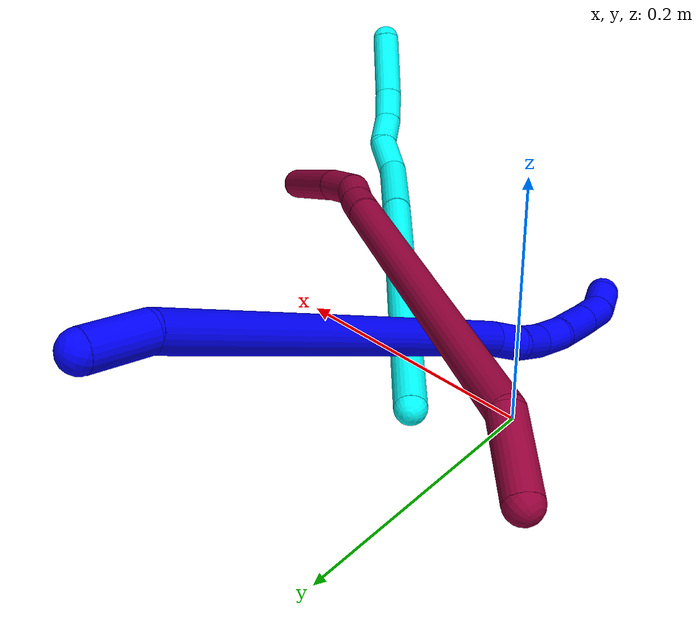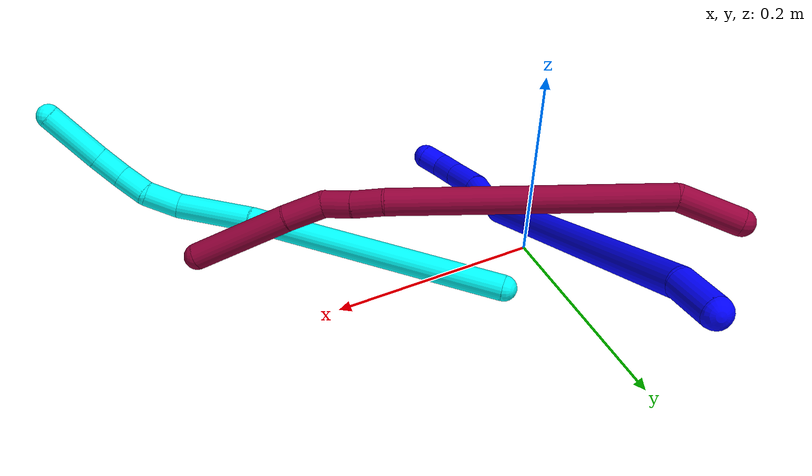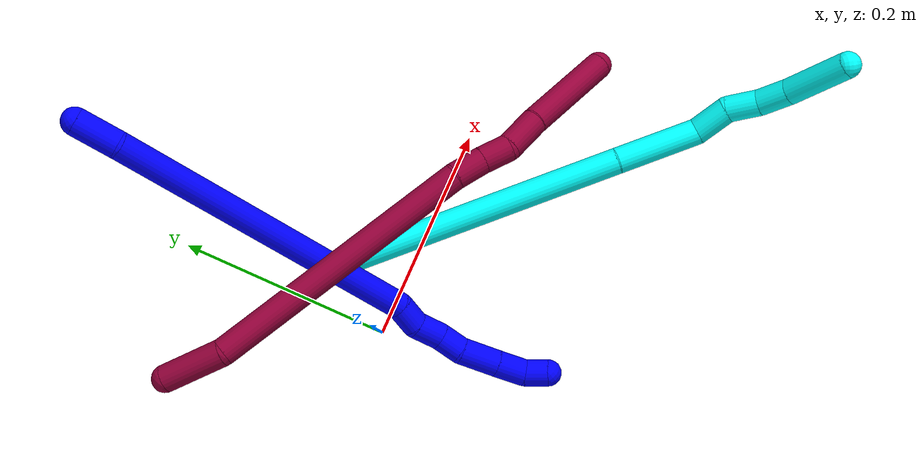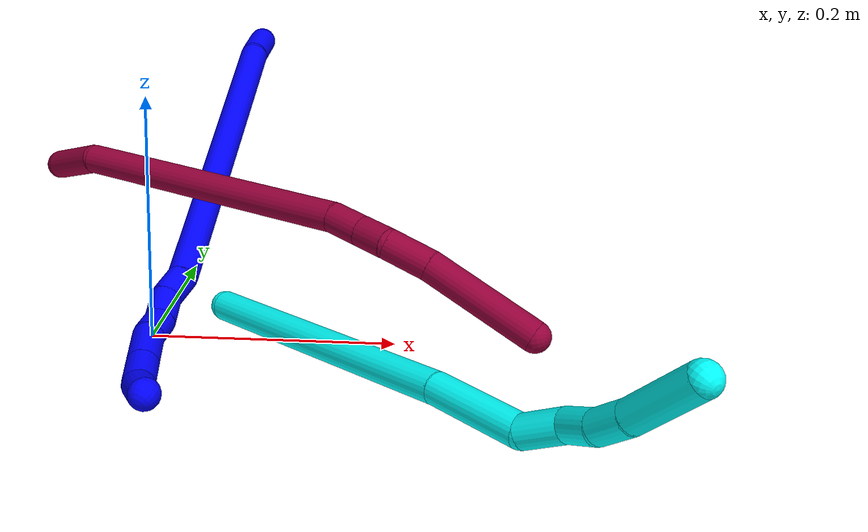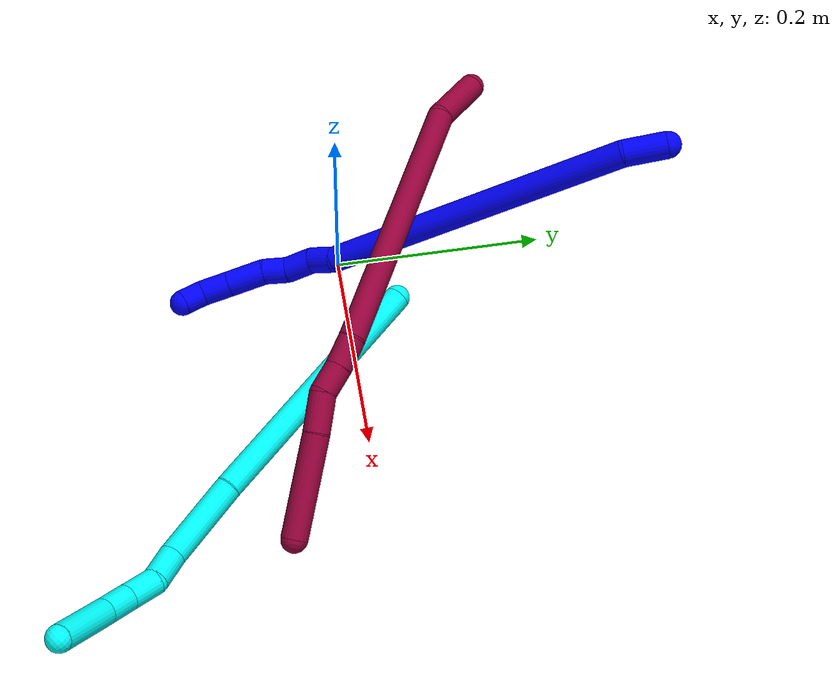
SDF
<sdf version="1.7">
 <world name="default">
  <model name="photoneo_s_sensor">
   <static>1</static>
   <pose>0 0 2 1.57079 1.57079 3.14159</pose>
   <link name="link">
    <inertial><mass>0.1</mass></inertial>
    <sensor name="sensor" type="depth">
     <update_rate>30</update_rate>
     <camera>
      <horizontal_fov>1.22</horizontal_fov>
      <image><width>1920</width><height>1200</height><format>B8G8R8</format></image>
      <clip><near>0.1</near><far>4</far></clip>
      <depth_camera><output>points</output></depth_camera>
     </camera>
     <plugin name="camera_plugin" filename="libgazebo_ros_depth_camera.so">
      <baseline>0.2</baseline>
      <alwaysOn>1</alwaysOn>
      <updateRate>0.0</updateRate>
      <cameraName>camera_ir</cameraName>
      <imageTopicName>/camera/color/image_raw</imageTopicName>
      <cameraInfoTopicName>/camera/color/camera_info</cameraInfoTopicName>
      <depthImageTopicName>/camera/depth/image_raw</depthImageTopicName>
      <depthImageCameraInfoTopicName>/camera/depth/camera_info</depthImageCameraInfoTopicName>
      <pointCloudTopicName>/camera/depth/points</pointCloudTopicName>
      <frameName>fr_optical</frameName>
      <pointCloudCutoff>0.1</pointCloudCutoff>
      <pointCloudCutoffMax>2.0</pointCloudCutoffMax>
      <distortionK1>0</distortionK1>
      <distortionK2>0</distortionK2>
      <distortionK3>0</distortionK3>
      <distortionT1>0</distortionT1>
      <distortionT2>0</distortionT2>
      <CxPrime>0</CxPrime>
      <Cx>0</Cx>
      <Cy>0</Cy>
      <focalLength>0</focalLength>
      <hackBaseline>0</hackBaseline>
     </plugin>
    </sensor>
   </link>
  </model>
  <model name="bin">
   <static>1</static>
   <link name="bottom">
    <collision name="collision-bottom">
     <pose>0 0 -0.01 0 -0 0</pose>
     <geometry><box><size>0.8 0.6 0.02</size></box></geometry>
     <surface>
      <friction><ode><mu>100</mu><mu2>100</mu2></ode></friction>
      <contact><collide_bitmask>65535</collide_bitmask></contact>
     </surface>
    </collision>
   </link>
   <link name="west_wall">
    <collision name="collision-west_wall">
     <pose>-0.41 0 0.1 0 -0 0</pose>
     <geometry><box><size>0.02 0.6 0.2</size></box></geometry>
     <surface>
      <friction><ode><mu>100</mu><mu2>100</mu2></ode></friction>
      <contact><collide_bitmask>65535</collide_bitmask></contact>
     </surface>
    </collision>
   </link>
   <link name="east_wall">
    <collision name="collision-east_wall">
     <pose>0.41 0 0.1 0 -0 0</pose>
     <geometry><box><size>0.02 0.6 0.2</size></box></geometry>
     <surface>
      <friction><ode><mu>100</mu><mu2>100</mu2></ode></friction>
      <contact><collide_bitmask>65535</collide_bitmask></contact>
     </surface>
    </collision>
   </link>
   <link name="south_wall">
    <collision name="collision-south_wall">
     <pose>0 -0.31 0.1 0 -0 0</pose>
     <geometry><box><size>0.8 0.02 0.2</size></box></geometry>
     <surface>
      <friction><ode><mu>100</mu><mu2>100</mu2></ode></friction>
      <contact><collide_bitmask>65535</collide_bitmask></contact>
     </surface>
    </collision>
   </link>
   <link name="north_wall">
    <collision name="collision-north_wall">
     <pose>0 0.31 0.1 0 -0 0</pose>
     <geometry><box><size>0.8 0.02 0.2</size></box></geometry>
     <surface>
      <friction><ode><mu>100</mu><mu2>100</mu2></ode></friction>
      <contact><collide_bitmask>65535</collide_bitmask></contact>
     </surface>
    </collision>
   </link>
  </model>
  <model name="1">
   <static>0</static>
   <link name="1">
    <collision name="collision-cylinder-e_1_1_4">
     <pose>-0.003266 -0.007988 -0.017819 2.72015 -0.165715 -0.740687</pose>
     <geometry><cylinder><radius>0.0125</radius><length>0.039598</length></cylinder></geometry>
     <surface>
      <friction><ode><mu>1.16</mu><mu2>1.16</mu2><slip1>0</slip1><slip2>0</slip2></ode></friction>
      <contact><ode><kp>1e+06</kp><kd>1</kd><max_vel>0</max_vel><min_depth>0.001</min_depth></ode></contact>
     </surface>
    </collision>
    <visual name="visual-cylinder-e_1_1_4">
     <pose>-0.003266 -0.007988 -0.017819 2.72015 -0.165715 -0.740687</pose>
     <geometry><cylinder><radius>0.0125</radius><length>0.039598</length></cylinder></geometry>
     <material><ambient>0 0 1 1</ambient></material>
    </visual>
    <collision name="collision-cylinder-e_2_4_5">
     <pose>0.0062 -0.057261 -0.178897 2.86102 0.085192 0.586255</pose>
     <geometry><cylinder><radius>0.0125</radius><length>0.299262</length></cylinder></geometry>
     <surface>
      <friction><ode><mu>1.16</mu><mu2>1.16</mu2><slip1>0</slip1><slip2>0</slip2></ode></friction>
      <contact><ode><kp>1e+06</kp><kd>1</kd><max_vel>0</max_vel><min_depth>0.001</min_depth></ode></contact>
     </surface>
    </collision>
    <visual name="visual-cylinder-e_2_4_5">
     <pose>0.0062 -0.057261 -0.178897 2.86102 0.085192 0.586255</pose>
     <geometry><cylinder><radius>0.0125</radius><length>0.299262</length></cylinder></geometry>
     <material><ambient>0 0 1 1</ambient></material>
    </visual>
    <collision name="collision-cylinder-e_3_5_6">
     <pose>0.017933 -0.098548 -0.334361 3.14134 -0.08167 -3.13551</pose>
     <geometry><cylinder><radius>0.0125</radius><length>0.024493</length></cylinder></geometry>
     <surface>
      <friction><ode><mu>1.16</mu><mu2>1.16</mu2><slip1>0</slip1><slip2>0</slip2></ode></friction>
      <contact><ode><kp>1e+06</kp><kd>1</kd><max_vel>0</max_vel><min_depth>0.001</min_depth></ode></contact>
     </surface>
    </collision>
    <visual name="visual-cylinder-e_3_5_6">
     <pose>0.017933 -0.098548 -0.334361 3.14134 -0.08167 -3.13551</pose>
     <geometry><cylinder><radius>0.0125</radius><length>0.024493</length></cylinder></geometry>
     <material><ambient>0 0 1 1</ambient></material>
    </visual>
    <collision name="collision-cylinder-e_4_6_7">
     <pose>0.017887 -0.103284 -0.359152 2.78191 0.070742 0.384462</pose>
     <geometry><cylinder><radius>0.0125</radius><length>0.02696</length></cylinder></geometry>
     <surface>
      <friction><ode><mu>1.16</mu><mu2>1.16</mu2><slip1>0</slip1><slip2>0</slip2></ode></friction>
      <contact><ode><kp>1e+06</kp><kd>1</kd><max_vel>0</max_vel><min_depth>0.001</min_depth></ode></contact>
     </surface>
    </collision>
    <visual name="visual-cylinder-e_4_6_7">
     <pose>0.017887 -0.103284 -0.359152 2.78191 0.070742 0.384462</pose>
     <geometry><cylinder><radius>0.0125</radius><length>0.02696</length></cylinder></geometry>
     <material><ambient>0 0 1 1</ambient></material>
    </visual>
    <collision name="collision-cylinder-e_5_7_8">
     <pose>0.015896 -0.111945 -0.38238 2.78798 -0.25387 -1.2405</pose>
     <geometry><cylinder><radius>0.0125</radius><length>0.023439</length></cylinder></geometry>
     <surface>
      <friction><ode><mu>1.16</mu><mu2>1.16</mu2><slip1>0</slip1><slip2>0</slip2></ode></friction>
      <contact><ode><kp>1e+06</kp><kd>1</kd><max_vel>0</max_vel><min_depth>0.001</min_depth></ode></contact>
     </surface>
    </collision>
    <visual name="visual-cylinder-e_5_7_8">
     <pose>0.015896 -0.111945 -0.38238 2.78798 -0.25387 -1.2405</pose>
     <geometry><cylinder><radius>0.0125</radius><length>0.023439</length></cylinder></geometry>
     <material><ambient>0 0 1 1</ambient></material>
    </visual>
    <collision name="collision-cylinder-e_6_8_9">
     <pose>0.011943 -0.125138 -0.408507 2.60241 -0.055922 -0.201749</pose>
     <geometry><cylinder><radius>0.0125</radius><length>0.036146</length></cylinder></geometry>
     <surface>
      <friction><ode><mu>1.16</mu><mu2>1.16</mu2><slip1>0</slip1><slip2>0</slip2></ode></friction>
      <contact><ode><kp>1e+06</kp><kd>1</kd><max_vel>0</max_vel><min_depth>0.001</min_depth></ode></contact>
     </surface>
    </collision>
    <visual name="visual-cylinder-e_6_8_9">
     <pose>0.011943 -0.125138 -0.408507 2.60241 -0.055922 -0.201749</pose>
     <geometry><cylinder><radius>0.0125</radius><length>0.036146</length></cylinder></geometry>
     <material><ambient>0 0 1 1</ambient></material>
    </visual>
    <collision name="collision-cylinder-e_7_9_10">
     <pose>0.009845 -0.141944 -0.435829 2.57435 -0.077313 -0.263836</pose>
     <geometry><cylinder><radius>0.0125</radius><length>0.028154</length></cylinder></geometry>
     <surface>
      <friction><ode><mu>1.16</mu><mu2>1.16</mu2><slip1>0</slip1><slip2>0</slip2></ode></friction>
      <contact><ode><kp>1e+06</kp><kd>1</kd><max_vel>0</max_vel><min_depth>0.001</min_depth></ode></contact>
     </surface>
    </collision>
    <visual name="visual-cylinder-e_7_9_10">
     <pose>0.009845 -0.141944 -0.435829 2.57435 -0.077313 -0.263836</pose>
     <geometry><cylinder><radius>0.0125</radius><length>0.028154</length></cylinder></geometry>
     <material><ambient>0 0 1 1</ambient></material>
    </visual>
    <collision name="collision-cylinder-e_8_10_2">
     <pose>0.007179 -0.158598 -0.453571 2.14573 -0.144414 -0.264561</pose>
     <geometry><cylinder><radius>0.0125</radius><length>0.021947</length></cylinder></geometry>
     <surface>
      <friction><ode><mu>1.16</mu><mu2>1.16</mu2><slip1>0</slip1><slip2>0</slip2></ode></friction>
      <contact><ode><kp>1e+06</kp><kd>1</kd><max_vel>0</max_vel><min_depth>0.001</min_depth></ode></contact>
     </surface>
    </collision>
    <visual name="visual-cylinder-e_8_10_2">
     <pose>0.007179 -0.158598 -0.453571 2.14573 -0.144414 -0.264561</pose>
     <geometry><cylinder><radius>0.0125</radius><length>0.021947</length></cylinder></geometry>
     <material><ambient>0 0 1 1</ambient></material>
    </visual>
    <collision name="collision-sphere-2">
     <pose>0.005599 -0.167712 -0.459476 0 -0 0</pose>
     <geometry><sphere><radius>0.0125</radius></sphere></geometry>
     <surface>
      <friction><ode><mu>1.16</mu><mu2>1.16</mu2><slip1>0</slip1><slip2>0</slip2></ode></friction>
      <contact><ode><kp>1e+06</kp><kd>1</kd><max_vel>0</max_vel><min_depth>0.001</min_depth></ode></contact>
     </surface>
    </collision>
    <visual name="visual-sphere-2">
     <pose>0.005599 -0.167712 -0.459476 0 -0 0</pose>
     <geometry><sphere><radius>0.0125</radius></sphere></geometry>
     <material><ambient>0 0 1 1</ambient></material>
    </visual>
    <collision name="collision-sphere-10">
     <pose>0.008758 -0.149485 -0.447666 0 -0 0</pose>
     <geometry><sphere><radius>0.0125</radius></sphere></geometry>
     <surface>
      <friction><ode><mu>1.16</mu><mu2>1.16</mu2><slip1>0</slip1><slip2>0</slip2></ode></friction>
      <contact><ode><kp>1e+06</kp><kd>1</kd><max_vel>0</max_vel><min_depth>0.001</min_depth></ode></contact>
     </surface>
    </collision>
    <visual name="visual-sphere-10">
     <pose>0.008758 -0.149485 -0.447666 0 -0 0</pose>
     <geometry><sphere><radius>0.0125</radius></sphere></geometry>
     <material><ambient>0 0 1 1</ambient></material>
    </visual>
    <collision name="collision-sphere-9">
     <pose>0.010932 -0.134403 -0.423992 0 -0 0</pose>
     <geometry><sphere><radius>0.0125</radius></sphere></geometry>
     <surface>
      <friction><ode><mu>1.16</mu><mu2>1.16</mu2><slip1>0</slip1><slip2>0</slip2></ode></friction>
      <contact><ode><kp>1e+06</kp><kd>1</kd><max_vel>0</max_vel><min_depth>0.001</min_depth></ode></contact>
     </surface>
    </collision>
    <visual name="visual-sphere-9">
     <pose>0.010932 -0.134403 -0.423992 0 -0 0</pose>
     <geometry><sphere><radius>0.0125</radius></sphere></geometry>
     <material><ambient>0 0 1 1</ambient></material>
    </visual>
    <collision name="collision-sphere-4">
     <pose>-0.006532 -0.015977 -0.035638 0 -0 0</pose>
     <geometry><sphere><radius>0.0125</radius></sphere></geometry>
     <surface>
      <friction><ode><mu>1.16</mu><mu2>1.16</mu2><slip1>0</slip1><slip2>0</slip2></ode></friction>
      <contact><ode><kp>1e+06</kp><kd>1</kd><max_vel>0</max_vel><min_depth>0.001</min_depth></ode></contact>
     </surface>
    </collision>
    <visual name="visual-sphere-4">
     <pose>-0.006532 -0.015977 -0.035638 0 -0 0</pose>
     <geometry><sphere><radius>0.0125</radius></sphere></geometry>
     <material><ambient>0 0 1 1</ambient></material>
    </visual>
    <collision name="collision-sphere-1">
     <geometry><sphere><radius>0.0125</radius></sphere></geometry>
     <surface>
      <friction><ode><mu>1.16</mu><mu2>1.16</mu2><slip1>0</slip1><slip2>0</slip2></ode></friction>
      <contact><ode><kp>1e+06</kp><kd>1</kd><max_vel>0</max_vel><min_depth>0.001</min_depth></ode></contact>
     </surface>
    </collision>
    <visual name="visual-sphere-1">
     <geometry><sphere><radius>0.0125</radius></sphere></geometry>
     <material><ambient>0 0 1 1</ambient></material>
    </visual>
    <collision name="collision-sphere-8">
     <pose>0.012953 -0.115873 -0.393023 0 -0 0</pose>
     <geometry><sphere><radius>0.0125</radius></sphere></geometry>
     <surface>
      <friction><ode><mu>1.16</mu><mu2>1.16</mu2><slip1>0</slip1><slip2>0</slip2></ode></friction>
      <contact><ode><kp>1e+06</kp><kd>1</kd><max_vel>0</max_vel><min_depth>0.001</min_depth></ode></contact>
     </surface>
    </collision>
    <visual name="visual-sphere-8">
     <pose>0.012953 -0.115873 -0.393023 0 -0 0</pose>
     <geometry><sphere><radius>0.0125</radius></sphere></geometry>
     <material><ambient>0 0 1 1</ambient></material>
    </visual>
    <collision name="collision-sphere-5">
     <pose>0.018932 -0.098545 -0.322155 0 -0 0</pose>
     <geometry><sphere><radius>0.0125</radius></sphere></geometry>
     <surface>
      <friction><ode><mu>1.16</mu><mu2>1.16</mu2><slip1>0</slip1><slip2>0</slip2></ode></friction>
      <contact><ode><kp>1e+06</kp><kd>1</kd><max_vel>0</max_vel><min_depth>0.001</min_depth></ode></contact>
     </surface>
    </collision>
    <visual name="visual-sphere-5">
     <pose>0.018932 -0.098545 -0.322155 0 -0 0</pose>
     <geometry><sphere><radius>0.0125</radius></sphere></geometry>
     <material><ambient>0 0 1 1</ambient></material>
    </visual>
    <collision name="collision-sphere-6">
     <pose>0.016934 -0.098551 -0.346566 0 -0 0</pose>
     <geometry><sphere><radius>0.0125</radius></sphere></geometry>
     <surface>
      <friction><ode><mu>1.16</mu><mu2>1.16</mu2><slip1>0</slip1><slip2>0</slip2></ode></friction>
      <contact><ode><kp>1e+06</kp><kd>1</kd><max_vel>0</max_vel><min_depth>0.001</min_depth></ode></contact>
     </surface>
    </collision>
    <visual name="visual-sphere-6">
     <pose>0.016934 -0.098551 -0.346566 0 -0 0</pose>
     <geometry><sphere><radius>0.0125</radius></sphere></geometry>
     <material><ambient>0 0 1 1</ambient></material>
    </visual>
    <collision name="collision-sphere-7">
     <pose>0.01884 -0.108016 -0.371738 0 -0 0</pose>
     <geometry><sphere><radius>0.0125</radius></sphere></geometry>
     <surface>
      <friction><ode><mu>1.16</mu><mu2>1.16</mu2><slip1>0</slip1><slip2>0</slip2></ode></friction>
      <contact><ode><kp>1e+06</kp><kd>1</kd><max_vel>0</max_vel><min_depth>0.001</min_depth></ode></contact>
     </surface>
    </collision>
    <visual name="visual-sphere-7">
     <pose>0.01884 -0.108016 -0.371738 0 -0 0</pose>
     <geometry><sphere><radius>0.0125</radius></sphere></geometry>
     <material><ambient>0 0 1 1</ambient></material>
    </visual>
    <inertial>
     <pose>0.007773 -0.07455 -0.236137 0 -0 0</pose>
     <mass>0.5</mass>
     <inertia>
      <ixx>0.003109</ixx>
      <ixy>0</ixy>
      <ixz>0</ixz>
      <iyy>-0.000563</iyy>
      <iyz>0</iyz>
      <izz>0.000405</izz>
     </inertia>
    </inertial>
   </link>
   <pose>0.054277 0.291635 0.207875 -0.483977 0.953598 0.572842</pose>
  </model>
  <model name="3">
   <static>0</static>
   <link name="3">
    <collision name="collision-cylinder-e_1_1_4">
     <pose>0.023661 -0.029963 0.123814 0.237435 0.183646 0.021966</pose>
     <geometry><cylinder><radius>0.0125</radius><length>0.259132</length></cylinder></geometry>
     <surface>
      <friction><ode><mu>1.16</mu><mu2>1.16</mu2><slip1>0</slip1><slip2>0</slip2></ode></friction>
      <contact><ode><kp>1e+06</kp><kd>1</kd><max_vel>0</max_vel><min_depth>0.001</min_depth></ode></contact>
     </surface>
    </collision>
    <visual name="visual-cylinder-e_1_1_4">
     <pose>0.023661 -0.029963 0.123814 0.237435 0.183646 0.021966</pose>
     <geometry><cylinder><radius>0.0125</radius><length>0.259132</length></cylinder></geometry>
     <material><ambient>0.003922 1 0.996078 1</ambient></material>
    </visual>
    <collision name="collision-cylinder-e_2_4_5">
     <pose>0.050976 -0.068642 0.286911 0.21834 0.090564 0.009933</pose>
     <geometry><cylinder><radius>0.0125</radius><length>0.08081</length></cylinder></geometry>
     <surface>
      <friction><ode><mu>1.16</mu><mu2>1.16</mu2><slip1>0</slip1><slip2>0</slip2></ode></friction>
      <contact><ode><kp>1e+06</kp><kd>1</kd><max_vel>0</max_vel><min_depth>0.001</min_depth></ode></contact>
     </surface>
    </collision>
    <visual name="visual-cylinder-e_2_4_5">
     <pose>0.050976 -0.068642 0.286911 0.21834 0.090564 0.009933</pose>
     <geometry><cylinder><radius>0.0125</radius><length>0.08081</length></cylinder></geometry>
     <material><ambient>0.003922 1 0.996078 1</ambient></material>
    </visual>
    <collision name="collision-cylinder-e_3_5_6">
     <pose>0.062478 -0.086464 0.339445 0.602144 0.454124 0.14324</pose>
     <geometry><cylinder><radius>0.0125</radius><length>0.035781</length></cylinder></geometry>
     <surface>
      <friction><ode><mu>1.16</mu><mu2>1.16</mu2><slip1>0</slip1><slip2>0</slip2></ode></friction>
      <contact><ode><kp>1e+06</kp><kd>1</kd><max_vel>0</max_vel><min_depth>0.001</min_depth></ode></contact>
     </surface>
    </collision>
    <visual name="visual-cylinder-e_3_5_6">
     <pose>0.062478 -0.086464 0.339445 0.602144 0.454124 0.14324</pose>
     <geometry><cylinder><radius>0.0125</radius><length>0.035781</length></cylinder></geometry>
     <material><ambient>0.003922 1 0.996078 1</ambient></material>
    </visual>
    <collision name="collision-cylinder-e_4_6_7">
     <pose>0.077971 -0.097299 0.365917 0.129937 0.520536 0.034649</pose>
     <geometry><cylinder><radius>0.0125</radius><length>0.030741</length></cylinder></geometry>
     <surface>
      <friction><ode><mu>1.16</mu><mu2>1.16</mu2><slip1>0</slip1><slip2>0</slip2></ode></friction>
      <contact><ode><kp>1e+06</kp><kd>1</kd><max_vel>0</max_vel><min_depth>0.001</min_depth></ode></contact>
     </surface>
    </collision>
    <visual name="visual-cylinder-e_4_6_7">
     <pose>0.077971 -0.097299 0.365917 0.129937 0.520536 0.034649</pose>
     <geometry><cylinder><radius>0.0125</radius><length>0.030741</length></cylinder></geometry>
     <material><ambient>0.003922 1 0.996078 1</ambient></material>
    </visual>
    <collision name="collision-cylinder-e_5_7_8">
     <pose>0.095528 -0.103084 0.390062 0.355693 0.704928 0.132037</pose>
     <geometry><cylinder><radius>0.0125</radius><length>0.030596</length></cylinder></geometry>
     <surface>
      <friction><ode><mu>1.16</mu><mu2>1.16</mu2><slip1>0</slip1><slip2>0</slip2></ode></friction>
      <contact><ode><kp>1e+06</kp><kd>1</kd><max_vel>0</max_vel><min_depth>0.001</min_depth></ode></contact>
     </surface>
    </collision>
    <visual name="visual-cylinder-e_5_7_8">
     <pose>0.095528 -0.103084 0.390062 0.355693 0.704928 0.132037</pose>
     <geometry><cylinder><radius>0.0125</radius><length>0.030596</length></cylinder></geometry>
     <material><ambient>0.003922 1 0.996078 1</ambient></material>
    </visual>
    <collision name="collision-cylinder-e_6_8_2">
     <pose>0.12808 -0.117438 0.420266 0.490479 0.802913 0.211697</pose>
     <geometry><cylinder><radius>0.0125</radius><length>0.06294</length></cylinder></geometry>
     <surface>
      <friction><ode><mu>1.16</mu><mu2>1.16</mu2><slip1>0</slip1><slip2>0</slip2></ode></friction>
      <contact><ode><kp>1e+06</kp><kd>1</kd><max_vel>0</max_vel><min_depth>0.001</min_depth></ode></contact>
     </surface>
    </collision>
    <visual name="visual-cylinder-e_6_8_2">
     <pose>0.12808 -0.117438 0.420266 0.490479 0.802913 0.211697</pose>
     <geometry><cylinder><radius>0.0125</radius><length>0.06294</length></cylinder></geometry>
     <material><ambient>0.003922 1 0.996078 1</ambient></material>
    </visual>
    <collision name="collision-sphere-2">
     <pose>0.150718 -0.127735 0.439549 0 -0 0</pose>
     <geometry><sphere><radius>0.0125</radius></sphere></geometry>
     <surface>
      <friction><ode><mu>1.16</mu><mu2>1.16</mu2><slip1>0</slip1><slip2>0</slip2></ode></friction>
      <contact><ode><kp>1e+06</kp><kd>1</kd><max_vel>0</max_vel><min_depth>0.001</min_depth></ode></contact>
     </surface>
    </collision>
    <visual name="visual-sphere-2">
     <pose>0.150718 -0.127735 0.439549 0 -0 0</pose>
     <geometry><sphere><radius>0.0125</radius></sphere></geometry>
     <material><ambient>0.003922 1 0.996078 1</ambient></material>
    </visual>
    <collision name="collision-sphere-4">
     <pose>0.047321 -0.059926 0.247627 0 -0 0</pose>
     <geometry><sphere><radius>0.0125</radius></sphere></geometry>
     <surface>
      <friction><ode><mu>1.16</mu><mu2>1.16</mu2><slip1>0</slip1><slip2>0</slip2></ode></friction>
      <contact><ode><kp>1e+06</kp><kd>1</kd><max_vel>0</max_vel><min_depth>0.001</min_depth></ode></contact>
     </surface>
    </collision>
    <visual name="visual-sphere-4">
     <pose>0.047321 -0.059926 0.247627 0 -0 0</pose>
     <geometry><sphere><radius>0.0125</radius></sphere></geometry>
     <material><ambient>0.003922 1 0.996078 1</ambient></material>
    </visual>
    <collision name="collision-sphere-1">
     <geometry><sphere><radius>0.0125</radius></sphere></geometry>
     <surface>
      <friction><ode><mu>1.16</mu><mu2>1.16</mu2><slip1>0</slip1><slip2>0</slip2></ode></friction>
      <contact><ode><kp>1e+06</kp><kd>1</kd><max_vel>0</max_vel><min_depth>0.001</min_depth></ode></contact>
     </surface>
    </collision>
    <visual name="visual-sphere-1">
     <geometry><sphere><radius>0.0125</radius></sphere></geometry>
     <material><ambient>0.003922 1 0.996078 1</ambient></material>
    </visual>
    <collision name="collision-sphere-8">
     <pose>0.105441 -0.107142 0.400984 0 -0 0</pose>
     <geometry><sphere><radius>0.0125</radius></sphere></geometry>
     <surface>
      <friction><ode><mu>1.16</mu><mu2>1.16</mu2><slip1>0</slip1><slip2>0</slip2></ode></friction>
      <contact><ode><kp>1e+06</kp><kd>1</kd><max_vel>0</max_vel><min_depth>0.001</min_depth></ode></contact>
     </surface>
    </collision>
    <visual name="visual-sphere-8">
     <pose>0.105441 -0.107142 0.400984 0 -0 0</pose>
     <geometry><sphere><radius>0.0125</radius></sphere></geometry>
     <material><ambient>0.003922 1 0.996078 1</ambient></material>
    </visual>
    <collision name="collision-sphere-5">
     <pose>0.05463 -0.077358 0.326195 0 -0 0</pose>
     <geometry><sphere><radius>0.0125</radius></sphere></geometry>
     <surface>
      <friction><ode><mu>1.16</mu><mu2>1.16</mu2><slip1>0</slip1><slip2>0</slip2></ode></friction>
      <contact><ode><kp>1e+06</kp><kd>1</kd><max_vel>0</max_vel><min_depth>0.001</min_depth></ode></contact>
     </surface>
    </collision>
    <visual name="visual-sphere-5">
     <pose>0.05463 -0.077358 0.326195 0 -0 0</pose>
     <geometry><sphere><radius>0.0125</radius></sphere></geometry>
     <material><ambient>0.003922 1 0.996078 1</ambient></material>
    </visual>
    <collision name="collision-sphere-6">
     <pose>0.070326 -0.095571 0.352694 0 -0 0</pose>
     <geometry><sphere><radius>0.0125</radius></sphere></geometry>
     <surface>
      <friction><ode><mu>1.16</mu><mu2>1.16</mu2><slip1>0</slip1><slip2>0</slip2></ode></friction>
      <contact><ode><kp>1e+06</kp><kd>1</kd><max_vel>0</max_vel><min_depth>0.001</min_depth></ode></contact>
     </surface>
    </collision>
    <visual name="visual-sphere-6">
     <pose>0.070326 -0.095571 0.352694 0 -0 0</pose>
     <geometry><sphere><radius>0.0125</radius></sphere></geometry>
     <material><ambient>0.003922 1 0.996078 1</ambient></material>
    </visual>
    <collision name="collision-sphere-7">
     <pose>0.085615 -0.099026 0.379139 0 -0 0</pose>
     <geometry><sphere><radius>0.0125</radius></sphere></geometry>
     <surface>
      <friction><ode><mu>1.16</mu><mu2>1.16</mu2><slip1>0</slip1><slip2>0</slip2></ode></friction>
      <contact><ode><kp>1e+06</kp><kd>1</kd><max_vel>0</max_vel><min_depth>0.001</min_depth></ode></contact>
     </surface>
    </collision>
    <visual name="visual-sphere-7">
     <pose>0.085615 -0.099026 0.379139 0 -0 0</pose>
     <geometry><sphere><radius>0.0125</radius></sphere></geometry>
     <material><ambient>0.003922 1 0.996078 1</ambient></material>
    </visual>
    <inertial>
     <pose>0.051734 -0.059883 0.234099 0 -0 0</pose>
     <mass>0.5</mass>
     <inertia><ixx>0.001557</ixx><ixy>0</ixy><ixz>0</ixz><iyy>0.001526</iyy><iyz>0</iyz><izz>0.0001</izz></inertia>
    </inertial>
   </link>
   <pose>0.053652 0.049905 0.011507 -2.32023 -1.25286 -1.82731</pose>
  </model>
  <model name="8">
   <static>0</static>
   <link name="8">
    <collision name="collision-cylinder-e_1_1_4">
     <pose>-0.012963 -0.003903 0.025806 0.150119 -0.460998 -0.035291</pose>
     <geometry><cylinder><radius>0.0125</radius><length>0.058283</length></cylinder></geometry>
     <surface>
      <friction><ode><mu>1.16</mu><mu2>1.16</mu2><slip1>0</slip1><slip2>0</slip2></ode></friction>
      <contact><ode><kp>1e+06</kp><kd>1</kd><max_vel>0</max_vel><min_depth>0.001</min_depth></ode></contact>
     </surface>
    </collision>
    <visual name="visual-cylinder-e_1_1_4">
     <pose>-0.012963 -0.003903 0.025806 0.150119 -0.460998 -0.035291</pose>
     <geometry><cylinder><radius>0.0125</radius><length>0.058283</length></cylinder></geometry>
     <material><ambient>0.584314 0 0.227451 1</ambient></material>
    </visual>
    <collision name="collision-cylinder-e_2_4_5">
     <pose>-0.039125 -0.04967 0.170562 0.338399 -0.104282 -0.017831</pose>
     <geometry><cylinder><radius>0.0125</radius><length>0.253582</length></cylinder></geometry>
     <surface>
      <friction><ode><mu>1.16</mu><mu2>1.16</mu2><slip1>0</slip1><slip2>0</slip2></ode></friction>
      <contact><ode><kp>1e+06</kp><kd>1</kd><max_vel>0</max_vel><min_depth>0.001</min_depth></ode></contact>
     </surface>
    </collision>
    <visual name="visual-cylinder-e_2_4_5">
     <pose>-0.039125 -0.04967 0.170562 0.338399 -0.104282 -0.017831</pose>
     <geometry><cylinder><radius>0.0125</radius><length>0.253582</length></cylinder></geometry>
     <material><ambient>0.584314 0 0.227451 1</ambient></material>
    </visual>
    <collision name="collision-cylinder-e_3_5_6">
     <pose>-0.053997 -0.098791 0.302038 0.525182 -0.115152 -0.030984</pose>
     <geometry><cylinder><radius>0.0125</radius><length>0.029145</length></cylinder></geometry>
     <surface>
      <friction><ode><mu>1.16</mu><mu2>1.16</mu2><slip1>0</slip1><slip2>0</slip2></ode></friction>
      <contact><ode><kp>1e+06</kp><kd>1</kd><max_vel>0</max_vel><min_depth>0.001</min_depth></ode></contact>
     </surface>
    </collision>
    <visual name="visual-cylinder-e_3_5_6">
     <pose>-0.053997 -0.098791 0.302038 0.525182 -0.115152 -0.030984</pose>
     <geometry><cylinder><radius>0.0125</radius><length>0.029145</length></cylinder></geometry>
     <material><ambient>0.584314 0 0.227451 1</ambient></material>
    </visual>
    <collision name="collision-cylinder-e_4_6_7">
     <pose>-0.058637 -0.112666 0.326064 0.522115 -0.219856 -0.058956</pose>
     <geometry><cylinder><radius>0.0125</radius><length>0.027191</length></cylinder></geometry>
     <surface>
      <friction><ode><mu>1.16</mu><mu2>1.16</mu2><slip1>0</slip1><slip2>0</slip2></ode></friction>
      <contact><ode><kp>1e+06</kp><kd>1</kd><max_vel>0</max_vel><min_depth>0.001</min_depth></ode></contact>
     </surface>
    </collision>
    <visual name="visual-cylinder-e_4_6_7">
     <pose>-0.058637 -0.112666 0.326064 0.522115 -0.219856 -0.058956</pose>
     <geometry><cylinder><radius>0.0125</radius><length>0.027191</length></cylinder></geometry>
     <material><ambient>0.584314 0 0.227451 1</ambient></material>
    </visual>
    <collision name="collision-cylinder-e_5_7_8">
     <pose>-0.058315 -0.128596 0.353229 0.536379 0.178456 0.049162</pose>
     <geometry><cylinder><radius>0.0125</radius><length>0.037035</length></cylinder></geometry>
     <surface>
      <friction><ode><mu>1.16</mu><mu2>1.16</mu2><slip1>0</slip1><slip2>0</slip2></ode></friction>
      <contact><ode><kp>1e+06</kp><kd>1</kd><max_vel>0</max_vel><min_depth>0.001</min_depth></ode></contact>
     </surface>
    </collision>
    <visual name="visual-cylinder-e_5_7_8">
     <pose>-0.058315 -0.128596 0.353229 0.536379 0.178456 0.049162</pose>
     <geometry><cylinder><radius>0.0125</radius><length>0.037035</length></cylinder></geometry>
     <material><ambient>0.584314 0 0.227451 1</ambient></material>
    </visual>
    <collision name="collision-cylinder-e_6_8_2">
     <pose>-0.047158 -0.166374 0.405945 0.655087 0.166875 0.056818</pose>
     <geometry><cylinder><radius>0.0125</radius><length>0.094763</length></cylinder></geometry>
     <surface>
      <friction><ode><mu>1.16</mu><mu2>1.16</mu2><slip1>0</slip1><slip2>0</slip2></ode></friction>
      <contact><ode><kp>1e+06</kp><kd>1</kd><max_vel>0</max_vel><min_depth>0.001</min_depth></ode></contact>
     </surface>
    </collision>
    <visual name="visual-cylinder-e_6_8_2">
     <pose>-0.047158 -0.166374 0.405945 0.655087 0.166875 0.056818</pose>
     <geometry><cylinder><radius>0.0125</radius><length>0.094763</length></cylinder></geometry>
     <material><ambient>0.584314 0 0.227451 1</ambient></material>
    </visual>
    <collision name="collision-sphere-2">
     <pose>-0.039287 -0.194839 0.442996 0 -0 0</pose>
     <geometry><sphere><radius>0.0125</radius></sphere></geometry>
     <surface>
      <friction><ode><mu>1.16</mu><mu2>1.16</mu2><slip1>0</slip1><slip2>0</slip2></ode></friction>
      <contact><ode><kp>1e+06</kp><kd>1</kd><max_vel>0</max_vel><min_depth>0.001</min_depth></ode></contact>
     </surface>
    </collision>
    <visual name="visual-sphere-2">
     <pose>-0.039287 -0.194839 0.442996 0 -0 0</pose>
     <geometry><sphere><radius>0.0125</radius></sphere></geometry>
     <material><ambient>0.584314 0 0.227451 1</ambient></material>
    </visual>
    <collision name="collision-sphere-4">
     <pose>-0.025927 -0.007807 0.051612 0 -0 0</pose>
     <geometry><sphere><radius>0.0125</radius></sphere></geometry>
     <surface>
      <friction><ode><mu>1.16</mu><mu2>1.16</mu2><slip1>0</slip1><slip2>0</slip2></ode></friction>
      <contact><ode><kp>1e+06</kp><kd>1</kd><max_vel>0</max_vel><min_depth>0.001</min_depth></ode></contact>
     </surface>
    </collision>
    <visual name="visual-sphere-4">
     <pose>-0.025927 -0.007807 0.051612 0 -0 0</pose>
     <geometry><sphere><radius>0.0125</radius></sphere></geometry>
     <material><ambient>0.584314 0 0.227451 1</ambient></material>
    </visual>
    <collision name="collision-sphere-1">
     <geometry><sphere><radius>0.0125</radius></sphere></geometry>
     <surface>
      <friction><ode><mu>1.16</mu><mu2>1.16</mu2><slip1>0</slip1><slip2>0</slip2></ode></friction>
      <contact><ode><kp>1e+06</kp><kd>1</kd><max_vel>0</max_vel><min_depth>0.001</min_depth></ode></contact>
     </surface>
    </collision>
    <visual name="visual-sphere-1">
     <geometry><sphere><radius>0.0125</radius></sphere></geometry>
     <material><ambient>0.584314 0 0.227451 1</ambient></material>
    </visual>
    <collision name="collision-sphere-8">
     <pose>-0.055028 -0.137908 0.368893 0 -0 0</pose>
     <geometry><sphere><radius>0.0125</radius></sphere></geometry>
     <surface>
      <friction><ode><mu>1.16</mu><mu2>1.16</mu2><slip1>0</slip1><slip2>0</slip2></ode></friction>
      <contact><ode><kp>1e+06</kp><kd>1</kd><max_vel>0</max_vel><min_depth>0.001</min_depth></ode></contact>
     </surface>
    </collision>
    <visual name="visual-sphere-8">
     <pose>-0.055028 -0.137908 0.368893 0 -0 0</pose>
     <geometry><sphere><radius>0.0125</radius></sphere></geometry>
     <material><ambient>0.584314 0 0.227451 1</ambient></material>
    </visual>
    <collision name="collision-sphere-5">
     <pose>-0.052323 -0.091533 0.289513 0 -0 0</pose>
     <geometry><sphere><radius>0.0125</radius></sphere></geometry>
     <surface>
      <friction><ode><mu>1.16</mu><mu2>1.16</mu2><slip1>0</slip1><slip2>0</slip2></ode></friction>
      <contact><ode><kp>1e+06</kp><kd>1</kd><max_vel>0</max_vel><min_depth>0.001</min_depth></ode></contact>
     </surface>
    </collision>
    <visual name="visual-sphere-5">
     <pose>-0.052323 -0.091533 0.289513 0 -0 0</pose>
     <geometry><sphere><radius>0.0125</radius></sphere></geometry>
     <material><ambient>0.584314 0 0.227451 1</ambient></material>
    </visual>
    <collision name="collision-sphere-6">
     <pose>-0.055672 -0.106049 0.314564 0 -0 0</pose>
     <geometry><sphere><radius>0.0125</radius></sphere></geometry>
     <surface>
      <friction><ode><mu>1.16</mu><mu2>1.16</mu2><slip1>0</slip1><slip2>0</slip2></ode></friction>
      <contact><ode><kp>1e+06</kp><kd>1</kd><max_vel>0</max_vel><min_depth>0.001</min_depth></ode></contact>
     </surface>
    </collision>
    <visual name="visual-sphere-6">
     <pose>-0.055672 -0.106049 0.314564 0 -0 0</pose>
     <geometry><sphere><radius>0.0125</radius></sphere></geometry>
     <material><ambient>0.584314 0 0.227451 1</ambient></material>
    </visual>
    <collision name="collision-sphere-7">
     <pose>-0.061602 -0.119283 0.337565 0 -0 0</pose>
     <geometry><sphere><radius>0.0125</radius></sphere></geometry>
     <surface>
      <friction><ode><mu>1.16</mu><mu2>1.16</mu2><slip1>0</slip1><slip2>0</slip2></ode></friction>
      <contact><ode><kp>1e+06</kp><kd>1</kd><max_vel>0</max_vel><min_depth>0.001</min_depth></ode></contact>
     </surface>
    </collision>
    <visual name="visual-sphere-7">
     <pose>-0.061602 -0.119283 0.337565 0 -0 0</pose>
     <geometry><sphere><radius>0.0125</radius></sphere></geometry>
     <material><ambient>0.584314 0 0.227451 1</ambient></material>
    </visual>
    <inertial>
     <pose>-0.040947 -0.078589 0.22795 0 -0 0</pose>
     <mass>0.5</mass>
     <inertia>
      <ixx>0.001439</ixx>
      <ixy>0</ixy>
      <ixz>0</ixz>
      <iyy>0.001344</iyy>
      <iyz>0</iyz>
      <izz>0.000678</izz>
     </inertia>
    </inertial>
   </link>
   <pose>-0.114243 0.149725 0.109896 1.35814 0.454741 1.2268</pose>
  </model>
 </world>
</sdf>
